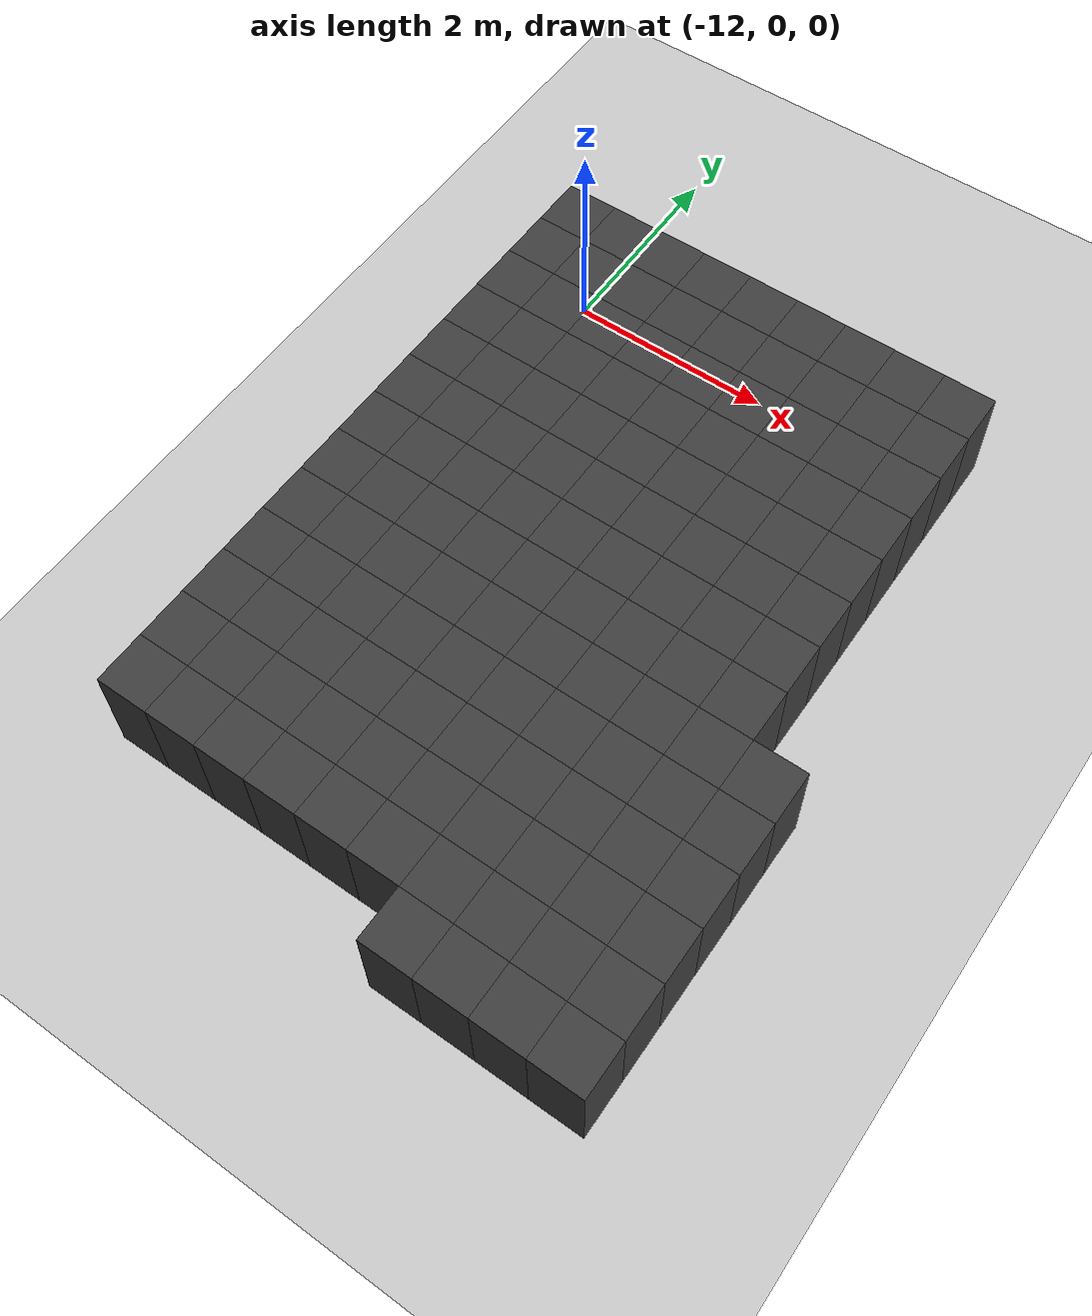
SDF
<sdf version="1.7">
 <world name="map_11779">
  <model name="ground_plane">
   <static>true</static>
   <link name="link">
    <collision name="collision">
     <geometry><plane><normal>0 0 1</normal><size>200 200</size></plane></geometry>
    </collision>
    <visual name="visual">
     <geometry><plane><normal>0 0 1</normal><size>200 200</size></plane></geometry>
     <material><ambient>0.8 0.8 0.8 1</ambient><diffuse>0.8 0.8 0.8 1</diffuse></material>
    </visual>
   </link>
  </model>
  <model name="maze_environment">
   <static>true</static>
   <link name="wall_972">
    <pose>-12.250 0.250 0.500 0 0 0</pose>
    <collision name="col"><geometry><box><size>0.5 0.5 1.0</size></box></geometry></collision>
    <visual name="vis">
     <geometry><box><size>0.5 0.5 1.0</size></box></geometry>
     <material><ambient>0.15 0.15 0.15 1</ambient><diffuse>0.25 0.25 0.25 1</diffuse></material>
    </visual>
   </link>
   <link name="wall_973">
    <pose>-11.750 0.250 0.500 0 0 0</pose>
    <collision name="col"><geometry><box><size>0.5 0.5 1.0</size></box></geometry></collision>
    <visual name="vis">
     <geometry><box><size>0.5 0.5 1.0</size></box></geometry>
     <material><ambient>0.15 0.15 0.15 1</ambient><diffuse>0.25 0.25 0.25 1</diffuse></material>
    </visual>
   </link>
   <link name="wall_974">
    <pose>-11.250 0.250 0.500 0 0 0</pose>
    <collision name="col"><geometry><box><size>0.5 0.5 1.0</size></box></geometry></collision>
    <visual name="vis">
     <geometry><box><size>0.5 0.5 1.0</size></box></geometry>
     <material><ambient>0.15 0.15 0.15 1</ambient><diffuse>0.25 0.25 0.25 1</diffuse></material>
    </visual>
   </link>
   <link name="wall_975">
    <pose>-10.750 0.250 0.500 0 0 0</pose>
    <collision name="col"><geometry><box><size>0.5 0.5 1.0</size></box></geometry></collision>
    <visual name="vis">
     <geometry><box><size>0.5 0.5 1.0</size></box></geometry>
     <material><ambient>0.15 0.15 0.15 1</ambient><diffuse>0.25 0.25 0.25 1</diffuse></material>
    </visual>
   </link>
   <link name="wall_976">
    <pose>-10.250 0.250 0.500 0 0 0</pose>
    <collision name="col"><geometry><box><size>0.5 0.5 1.0</size></box></geometry></collision>
    <visual name="vis">
     <geometry><box><size>0.5 0.5 1.0</size></box></geometry>
     <material><ambient>0.15 0.15 0.15 1</ambient><diffuse>0.25 0.25 0.25 1</diffuse></material>
    </visual>
   </link>
   <link name="wall_977">
    <pose>-9.750 0.250 0.500 0 0 0</pose>
    <collision name="col"><geometry><box><size>0.5 0.5 1.0</size></box></geometry></collision>
    <visual name="vis">
     <geometry><box><size>0.5 0.5 1.0</size></box></geometry>
     <material><ambient>0.15 0.15 0.15 1</ambient><diffuse>0.25 0.25 0.25 1</diffuse></material>
    </visual>
   </link>
   <link name="wall_978">
    <pose>-9.250 0.250 0.500 0 0 0</pose>
    <collision name="col"><geometry><box><size>0.5 0.5 1.0</size></box></geometry></collision>
    <visual name="vis">
     <geometry><box><size>0.5 0.5 1.0</size></box></geometry>
     <material><ambient>0.15 0.15 0.15 1</ambient><diffuse>0.25 0.25 0.25 1</diffuse></material>
    </visual>
   </link>
   <link name="wall_979">
    <pose>-8.750 0.250 0.500 0 0 0</pose>
    <collision name="col"><geometry><box><size>0.5 0.5 1.0</size></box></geometry></collision>
    <visual name="vis">
     <geometry><box><size>0.5 0.5 1.0</size></box></geometry>
     <material><ambient>0.15 0.15 0.15 1</ambient><diffuse>0.25 0.25 0.25 1</diffuse></material>
    </visual>
   </link>
   <link name="wall_980">
    <pose>-8.250 0.250 0.500 0 0 0</pose>
    <collision name="col"><geometry><box><size>0.5 0.5 1.0</size></box></geometry></collision>
    <visual name="vis">
     <geometry><box><size>0.5 0.5 1.0</size></box></geometry>
     <material><ambient>0.15 0.15 0.15 1</ambient><diffuse>0.25 0.25 0.25 1</diffuse></material>
    </visual>
   </link>
   <link name="wall_1013">
    <pose>-12.250 -0.250 0.500 0 0 0</pose>
    <collision name="col"><geometry><box><size>0.5 0.5 1.0</size></box></geometry></collision>
    <visual name="vis">
     <geometry><box><size>0.5 0.5 1.0</size></box></geometry>
     <material><ambient>0.15 0.15 0.15 1</ambient><diffuse>0.25 0.25 0.25 1</diffuse></material>
    </visual>
   </link>
   <link name="wall_1014">
    <pose>-11.750 -0.250 0.500 0 0 0</pose>
    <collision name="col"><geometry><box><size>0.5 0.5 1.0</size></box></geometry></collision>
    <visual name="vis">
     <geometry><box><size>0.5 0.5 1.0</size></box></geometry>
     <material><ambient>0.15 0.15 0.15 1</ambient><diffuse>0.25 0.25 0.25 1</diffuse></material>
    </visual>
   </link>
   <link name="wall_1015">
    <pose>-11.250 -0.250 0.500 0 0 0</pose>
    <collision name="col"><geometry><box><size>0.5 0.5 1.0</size></box></geometry></collision>
    <visual name="vis">
     <geometry><box><size>0.5 0.5 1.0</size></box></geometry>
     <material><ambient>0.15 0.15 0.15 1</ambient><diffuse>0.25 0.25 0.25 1</diffuse></material>
    </visual>
   </link>
   <link name="wall_1016">
    <pose>-10.750 -0.250 0.500 0 0 0</pose>
    <collision name="col"><geometry><box><size>0.5 0.5 1.0</size></box></geometry></collision>
    <visual name="vis">
     <geometry><box><size>0.5 0.5 1.0</size></box></geometry>
     <material><ambient>0.15 0.15 0.15 1</ambient><diffuse>0.25 0.25 0.25 1</diffuse></material>
    </visual>
   </link>
   <link name="wall_1017">
    <pose>-10.250 -0.250 0.500 0 0 0</pose>
    <collision name="col"><geometry><box><size>0.5 0.5 1.0</size></box></geometry></collision>
    <visual name="vis">
     <geometry><box><size>0.5 0.5 1.0</size></box></geometry>
     <material><ambient>0.15 0.15 0.15 1</ambient><diffuse>0.25 0.25 0.25 1</diffuse></material>
    </visual>
   </link>
   <link name="wall_1018">
    <pose>-9.750 -0.250 0.500 0 0 0</pose>
    <collision name="col"><geometry><box><size>0.5 0.5 1.0</size></box></geometry></collision>
    <visual name="vis">
     <geometry><box><size>0.5 0.5 1.0</size></box></geometry>
     <material><ambient>0.15 0.15 0.15 1</ambient><diffuse>0.25 0.25 0.25 1</diffuse></material>
    </visual>
   </link>
   <link name="wall_1019">
    <pose>-9.250 -0.250 0.500 0 0 0</pose>
    <collision name="col"><geometry><box><size>0.5 0.5 1.0</size></box></geometry></collision>
    <visual name="vis">
     <geometry><box><size>0.5 0.5 1.0</size></box></geometry>
     <material><ambient>0.15 0.15 0.15 1</ambient><diffuse>0.25 0.25 0.25 1</diffuse></material>
    </visual>
   </link>
   <link name="wall_1020">
    <pose>-8.750 -0.250 0.500 0 0 0</pose>
    <collision name="col"><geometry><box><size>0.5 0.5 1.0</size></box></geometry></collision>
    <visual name="vis">
     <geometry><box><size>0.5 0.5 1.0</size></box></geometry>
     <material><ambient>0.15 0.15 0.15 1</ambient><diffuse>0.25 0.25 0.25 1</diffuse></material>
    </visual>
   </link>
   <link name="wall_1021">
    <pose>-8.250 -0.250 0.500 0 0 0</pose>
    <collision name="col"><geometry><box><size>0.5 0.5 1.0</size></box></geometry></collision>
    <visual name="vis">
     <geometry><box><size>0.5 0.5 1.0</size></box></geometry>
     <material><ambient>0.15 0.15 0.15 1</ambient><diffuse>0.25 0.25 0.25 1</diffuse></material>
    </visual>
   </link>
   <link name="wall_1054">
    <pose>-12.250 -0.750 0.500 0 0 0</pose>
    <collision name="col"><geometry><box><size>0.5 0.5 1.0</size></box></geometry></collision>
    <visual name="vis">
     <geometry><box><size>0.5 0.5 1.0</size></box></geometry>
     <material><ambient>0.15 0.15 0.15 1</ambient><diffuse>0.25 0.25 0.25 1</diffuse></material>
    </visual>
   </link>
   <link name="wall_1055">
    <pose>-11.750 -0.750 0.500 0 0 0</pose>
    <collision name="col"><geometry><box><size>0.5 0.5 1.0</size></box></geometry></collision>
    <visual name="vis">
     <geometry><box><size>0.5 0.5 1.0</size></box></geometry>
     <material><ambient>0.15 0.15 0.15 1</ambient><diffuse>0.25 0.25 0.25 1</diffuse></material>
    </visual>
   </link>
   <link name="wall_1056">
    <pose>-11.250 -0.750 0.500 0 0 0</pose>
    <collision name="col"><geometry><box><size>0.5 0.5 1.0</size></box></geometry></collision>
    <visual name="vis">
     <geometry><box><size>0.5 0.5 1.0</size></box></geometry>
     <material><ambient>0.15 0.15 0.15 1</ambient><diffuse>0.25 0.25 0.25 1</diffuse></material>
    </visual>
   </link>
   <link name="wall_1057">
    <pose>-10.750 -0.750 0.500 0 0 0</pose>
    <collision name="col"><geometry><box><size>0.5 0.5 1.0</size></box></geometry></collision>
    <visual name="vis">
     <geometry><box><size>0.5 0.5 1.0</size></box></geometry>
     <material><ambient>0.15 0.15 0.15 1</ambient><diffuse>0.25 0.25 0.25 1</diffuse></material>
    </visual>
   </link>
   <link name="wall_1058">
    <pose>-10.250 -0.750 0.500 0 0 0</pose>
    <collision name="col"><geometry><box><size>0.5 0.5 1.0</size></box></geometry></collision>
    <visual name="vis">
     <geometry><box><size>0.5 0.5 1.0</size></box></geometry>
     <material><ambient>0.15 0.15 0.15 1</ambient><diffuse>0.25 0.25 0.25 1</diffuse></material>
    </visual>
   </link>
   <link name="wall_1059">
    <pose>-9.750 -0.750 0.500 0 0 0</pose>
    <collision name="col"><geometry><box><size>0.5 0.5 1.0</size></box></geometry></collision>
    <visual name="vis">
     <geometry><box><size>0.5 0.5 1.0</size></box></geometry>
     <material><ambient>0.15 0.15 0.15 1</ambient><diffuse>0.25 0.25 0.25 1</diffuse></material>
    </visual>
   </link>
   <link name="wall_1060">
    <pose>-9.250 -0.750 0.500 0 0 0</pose>
    <collision name="col"><geometry><box><size>0.5 0.5 1.0</size></box></geometry></collision>
    <visual name="vis">
     <geometry><box><size>0.5 0.5 1.0</size></box></geometry>
     <material><ambient>0.15 0.15 0.15 1</ambient><diffuse>0.25 0.25 0.25 1</diffuse></material>
    </visual>
   </link>
   <link name="wall_1061">
    <pose>-8.750 -0.750 0.500 0 0 0</pose>
    <collision name="col"><geometry><box><size>0.5 0.5 1.0</size></box></geometry></collision>
    <visual name="vis">
     <geometry><box><size>0.5 0.5 1.0</size></box></geometry>
     <material><ambient>0.15 0.15 0.15 1</ambient><diffuse>0.25 0.25 0.25 1</diffuse></material>
    </visual>
   </link>
   <link name="wall_1062">
    <pose>-8.250 -0.750 0.500 0 0 0</pose>
    <collision name="col"><geometry><box><size>0.5 0.5 1.0</size></box></geometry></collision>
    <visual name="vis">
     <geometry><box><size>0.5 0.5 1.0</size></box></geometry>
     <material><ambient>0.15 0.15 0.15 1</ambient><diffuse>0.25 0.25 0.25 1</diffuse></material>
    </visual>
   </link>
   <link name="wall_1095">
    <pose>-12.250 -1.250 0.500 0 0 0</pose>
    <collision name="col"><geometry><box><size>0.5 0.5 1.0</size></box></geometry></collision>
    <visual name="vis">
     <geometry><box><size>0.5 0.5 1.0</size></box></geometry>
     <material><ambient>0.15 0.15 0.15 1</ambient><diffuse>0.25 0.25 0.25 1</diffuse></material>
    </visual>
   </link>
   <link name="wall_1096">
    <pose>-11.750 -1.250 0.500 0 0 0</pose>
    <collision name="col"><geometry><box><size>0.5 0.5 1.0</size></box></geometry></collision>
    <visual name="vis">
     <geometry><box><size>0.5 0.5 1.0</size></box></geometry>
     <material><ambient>0.15 0.15 0.15 1</ambient><diffuse>0.25 0.25 0.25 1</diffuse></material>
    </visual>
   </link>
   <link name="wall_1097">
    <pose>-11.250 -1.250 0.500 0 0 0</pose>
    <collision name="col"><geometry><box><size>0.5 0.5 1.0</size></box></geometry></collision>
    <visual name="vis">
     <geometry><box><size>0.5 0.5 1.0</size></box></geometry>
     <material><ambient>0.15 0.15 0.15 1</ambient><diffuse>0.25 0.25 0.25 1</diffuse></material>
    </visual>
   </link>
   <link name="wall_1098">
    <pose>-10.750 -1.250 0.500 0 0 0</pose>
    <collision name="col"><geometry><box><size>0.5 0.5 1.0</size></box></geometry></collision>
    <visual name="vis">
     <geometry><box><size>0.5 0.5 1.0</size></box></geometry>
     <material><ambient>0.15 0.15 0.15 1</ambient><diffuse>0.25 0.25 0.25 1</diffuse></material>
    </visual>
   </link>
   <link name="wall_1099">
    <pose>-10.250 -1.250 0.500 0 0 0</pose>
    <collision name="col"><geometry><box><size>0.5 0.5 1.0</size></box></geometry></collision>
    <visual name="vis">
     <geometry><box><size>0.5 0.5 1.0</size></box></geometry>
     <material><ambient>0.15 0.15 0.15 1</ambient><diffuse>0.25 0.25 0.25 1</diffuse></material>
    </visual>
   </link>
   <link name="wall_1100">
    <pose>-9.750 -1.250 0.500 0 0 0</pose>
    <collision name="col"><geometry><box><size>0.5 0.5 1.0</size></box></geometry></collision>
    <visual name="vis">
     <geometry><box><size>0.5 0.5 1.0</size></box></geometry>
     <material><ambient>0.15 0.15 0.15 1</ambient><diffuse>0.25 0.25 0.25 1</diffuse></material>
    </visual>
   </link>
   <link name="wall_1101">
    <pose>-9.250 -1.250 0.500 0 0 0</pose>
    <collision name="col"><geometry><box><size>0.5 0.5 1.0</size></box></geometry></collision>
    <visual name="vis">
     <geometry><box><size>0.5 0.5 1.0</size></box></geometry>
     <material><ambient>0.15 0.15 0.15 1</ambient><diffuse>0.25 0.25 0.25 1</diffuse></material>
    </visual>
   </link>
   <link name="wall_1102">
    <pose>-8.750 -1.250 0.500 0 0 0</pose>
    <collision name="col"><geometry><box><size>0.5 0.5 1.0</size></box></geometry></collision>
    <visual name="vis">
     <geometry><box><size>0.5 0.5 1.0</size></box></geometry>
     <material><ambient>0.15 0.15 0.15 1</ambient><diffuse>0.25 0.25 0.25 1</diffuse></material>
    </visual>
   </link>
   <link name="wall_1103">
    <pose>-8.250 -1.250 0.500 0 0 0</pose>
    <collision name="col"><geometry><box><size>0.5 0.5 1.0</size></box></geometry></collision>
    <visual name="vis">
     <geometry><box><size>0.5 0.5 1.0</size></box></geometry>
     <material><ambient>0.15 0.15 0.15 1</ambient><diffuse>0.25 0.25 0.25 1</diffuse></material>
    </visual>
   </link>
   <link name="wall_1135">
    <pose>-12.250 -1.750 0.500 0 0 0</pose>
    <collision name="col"><geometry><box><size>0.5 0.5 1.0</size></box></geometry></collision>
    <visual name="vis">
     <geometry><box><size>0.5 0.5 1.0</size></box></geometry>
     <material><ambient>0.15 0.15 0.15 1</ambient><diffuse>0.25 0.25 0.25 1</diffuse></material>
    </visual>
   </link>
   <link name="wall_1136">
    <pose>-11.750 -1.750 0.500 0 0 0</pose>
    <collision name="col"><geometry><box><size>0.5 0.5 1.0</size></box></geometry></collision>
    <visual name="vis">
     <geometry><box><size>0.5 0.5 1.0</size></box></geometry>
     <material><ambient>0.15 0.15 0.15 1</ambient><diffuse>0.25 0.25 0.25 1</diffuse></material>
    </visual>
   </link>
   <link name="wall_1137">
    <pose>-11.250 -1.750 0.500 0 0 0</pose>
    <collision name="col"><geometry><box><size>0.5 0.5 1.0</size></box></geometry></collision>
    <visual name="vis">
     <geometry><box><size>0.5 0.5 1.0</size></box></geometry>
     <material><ambient>0.15 0.15 0.15 1</ambient><diffuse>0.25 0.25 0.25 1</diffuse></material>
    </visual>
   </link>
   <link name="wall_1138">
    <pose>-10.750 -1.750 0.500 0 0 0</pose>
    <collision name="col"><geometry><box><size>0.5 0.5 1.0</size></box></geometry></collision>
    <visual name="vis">
     <geometry><box><size>0.5 0.5 1.0</size></box></geometry>
     <material><ambient>0.15 0.15 0.15 1</ambient><diffuse>0.25 0.25 0.25 1</diffuse></material>
    </visual>
   </link>
   <link name="wall_1139">
    <pose>-10.250 -1.750 0.500 0 0 0</pose>
    <collision name="col"><geometry><box><size>0.5 0.5 1.0</size></box></geometry></collision>
    <visual name="vis">
     <geometry><box><size>0.5 0.5 1.0</size></box></geometry>
     <material><ambient>0.15 0.15 0.15 1</ambient><diffuse>0.25 0.25 0.25 1</diffuse></material>
    </visual>
   </link>
   <link name="wall_1140">
    <pose>-9.750 -1.750 0.500 0 0 0</pose>
    <collision name="col"><geometry><box><size>0.5 0.5 1.0</size></box></geometry></collision>
    <visual name="vis">
     <geometry><box><size>0.5 0.5 1.0</size></box></geometry>
     <material><ambient>0.15 0.15 0.15 1</ambient><diffuse>0.25 0.25 0.25 1</diffuse></material>
    </visual>
   </link>
   <link name="wall_1141">
    <pose>-9.250 -1.750 0.500 0 0 0</pose>
    <collision name="col"><geometry><box><size>0.5 0.5 1.0</size></box></geometry></collision>
    <visual name="vis">
     <geometry><box><size>0.5 0.5 1.0</size></box></geometry>
     <material><ambient>0.15 0.15 0.15 1</ambient><diffuse>0.25 0.25 0.25 1</diffuse></material>
    </visual>
   </link>
   <link name="wall_1142">
    <pose>-8.750 -1.750 0.500 0 0 0</pose>
    <collision name="col"><geometry><box><size>0.5 0.5 1.0</size></box></geometry></collision>
    <visual name="vis">
     <geometry><box><size>0.5 0.5 1.0</size></box></geometry>
     <material><ambient>0.15 0.15 0.15 1</ambient><diffuse>0.25 0.25 0.25 1</diffuse></material>
    </visual>
   </link>
   <link name="wall_1143">
    <pose>-8.250 -1.750 0.500 0 0 0</pose>
    <collision name="col"><geometry><box><size>0.5 0.5 1.0</size></box></geometry></collision>
    <visual name="vis">
     <geometry><box><size>0.5 0.5 1.0</size></box></geometry>
     <material><ambient>0.15 0.15 0.15 1</ambient><diffuse>0.25 0.25 0.25 1</diffuse></material>
    </visual>
   </link>
   <link name="wall_1177">
    <pose>-12.250 -2.250 0.500 0 0 0</pose>
    <collision name="col"><geometry><box><size>0.5 0.5 1.0</size></box></geometry></collision>
    <visual name="vis">
     <geometry><box><size>0.5 0.5 1.0</size></box></geometry>
     <material><ambient>0.15 0.15 0.15 1</ambient><diffuse>0.25 0.25 0.25 1</diffuse></material>
    </visual>
   </link>
   <link name="wall_1178">
    <pose>-11.750 -2.250 0.500 0 0 0</pose>
    <collision name="col"><geometry><box><size>0.5 0.5 1.0</size></box></geometry></collision>
    <visual name="vis">
     <geometry><box><size>0.5 0.5 1.0</size></box></geometry>
     <material><ambient>0.15 0.15 0.15 1</ambient><diffuse>0.25 0.25 0.25 1</diffuse></material>
    </visual>
   </link>
   <link name="wall_1179">
    <pose>-11.250 -2.250 0.500 0 0 0</pose>
    <collision name="col"><geometry><box><size>0.5 0.5 1.0</size></box></geometry></collision>
    <visual name="vis">
     <geometry><box><size>0.5 0.5 1.0</size></box></geometry>
     <material><ambient>0.15 0.15 0.15 1</ambient><diffuse>0.25 0.25 0.25 1</diffuse></material>
    </visual>
   </link>
   <link name="wall_1180">
    <pose>-10.750 -2.250 0.500 0 0 0</pose>
    <collision name="col"><geometry><box><size>0.5 0.5 1.0</size></box></geometry></collision>
    <visual name="vis">
     <geometry><box><size>0.5 0.5 1.0</size></box></geometry>
     <material><ambient>0.15 0.15 0.15 1</ambient><diffuse>0.25 0.25 0.25 1</diffuse></material>
    </visual>
   </link>
   <link name="wall_1181">
    <pose>-10.250 -2.250 0.500 0 0 0</pose>
    <collision name="col"><geometry><box><size>0.5 0.5 1.0</size></box></geometry></collision>
    <visual name="vis">
     <geometry><box><size>0.5 0.5 1.0</size></box></geometry>
     <material><ambient>0.15 0.15 0.15 1</ambient><diffuse>0.25 0.25 0.25 1</diffuse></material>
    </visual>
   </link>
   <link name="wall_1182">
    <pose>-9.750 -2.250 0.500 0 0 0</pose>
    <collision name="col"><geometry><box><size>0.5 0.5 1.0</size></box></geometry></collision>
    <visual name="vis">
     <geometry><box><size>0.5 0.5 1.0</size></box></geometry>
     <material><ambient>0.15 0.15 0.15 1</ambient><diffuse>0.25 0.25 0.25 1</diffuse></material>
    </visual>
   </link>
   <link name="wall_1183">
    <pose>-9.250 -2.250 0.500 0 0 0</pose>
    <collision name="col"><geometry><box><size>0.5 0.5 1.0</size></box></geometry></collision>
    <visual name="vis">
     <geometry><box><size>0.5 0.5 1.0</size></box></geometry>
     <material><ambient>0.15 0.15 0.15 1</ambient><diffuse>0.25 0.25 0.25 1</diffuse></material>
    </visual>
   </link>
   <link name="wall_1184">
    <pose>-8.750 -2.250 0.500 0 0 0</pose>
    <collision name="col"><geometry><box><size>0.5 0.5 1.0</size></box></geometry></collision>
    <visual name="vis">
     <geometry><box><size>0.5 0.5 1.0</size></box></geometry>
     <material><ambient>0.15 0.15 0.15 1</ambient><diffuse>0.25 0.25 0.25 1</diffuse></material>
    </visual>
   </link>
   <link name="wall_1185">
    <pose>-8.250 -2.250 0.500 0 0 0</pose>
    <collision name="col"><geometry><box><size>0.5 0.5 1.0</size></box></geometry></collision>
    <visual name="vis">
     <geometry><box><size>0.5 0.5 1.0</size></box></geometry>
     <material><ambient>0.15 0.15 0.15 1</ambient><diffuse>0.25 0.25 0.25 1</diffuse></material>
    </visual>
   </link>
   <link name="wall_1219">
    <pose>-12.250 -2.750 0.500 0 0 0</pose>
    <collision name="col"><geometry><box><size>0.5 0.5 1.0</size></box></geometry></collision>
    <visual name="vis">
     <geometry><box><size>0.5 0.5 1.0</size></box></geometry>
     <material><ambient>0.15 0.15 0.15 1</ambient><diffuse>0.25 0.25 0.25 1</diffuse></material>
    </visual>
   </link>
   <link name="wall_1220">
    <pose>-11.750 -2.750 0.500 0 0 0</pose>
    <collision name="col"><geometry><box><size>0.5 0.5 1.0</size></box></geometry></collision>
    <visual name="vis">
     <geometry><box><size>0.5 0.5 1.0</size></box></geometry>
     <material><ambient>0.15 0.15 0.15 1</ambient><diffuse>0.25 0.25 0.25 1</diffuse></material>
    </visual>
   </link>
   <link name="wall_1221">
    <pose>-11.250 -2.750 0.500 0 0 0</pose>
    <collision name="col"><geometry><box><size>0.5 0.5 1.0</size></box></geometry></collision>
    <visual name="vis">
     <geometry><box><size>0.5 0.5 1.0</size></box></geometry>
     <material><ambient>0.15 0.15 0.15 1</ambient><diffuse>0.25 0.25 0.25 1</diffuse></material>
    </visual>
   </link>
   <link name="wall_1222">
    <pose>-10.750 -2.750 0.500 0 0 0</pose>
    <collision name="col"><geometry><box><size>0.5 0.5 1.0</size></box></geometry></collision>
    <visual name="vis">
     <geometry><box><size>0.5 0.5 1.0</size></box></geometry>
     <material><ambient>0.15 0.15 0.15 1</ambient><diffuse>0.25 0.25 0.25 1</diffuse></material>
    </visual>
   </link>
   <link name="wall_1223">
    <pose>-10.250 -2.750 0.500 0 0 0</pose>
    <collision name="col"><geometry><box><size>0.5 0.5 1.0</size></box></geometry></collision>
    <visual name="vis">
     <geometry><box><size>0.5 0.5 1.0</size></box></geometry>
     <material><ambient>0.15 0.15 0.15 1</ambient><diffuse>0.25 0.25 0.25 1</diffuse></material>
    </visual>
   </link>
   <link name="wall_1224">
    <pose>-9.750 -2.750 0.500 0 0 0</pose>
    <collision name="col"><geometry><box><size>0.5 0.5 1.0</size></box></geometry></collision>
    <visual name="vis">
     <geometry><box><size>0.5 0.5 1.0</size></box></geometry>
     <material><ambient>0.15 0.15 0.15 1</ambient><diffuse>0.25 0.25 0.25 1</diffuse></material>
    </visual>
   </link>
   <link name="wall_1225">
    <pose>-9.250 -2.750 0.500 0 0 0</pose>
    <collision name="col"><geometry><box><size>0.5 0.5 1.0</size></box></geometry></collision>
    <visual name="vis">
     <geometry><box><size>0.5 0.5 1.0</size></box></geometry>
     <material><ambient>0.15 0.15 0.15 1</ambient><diffuse>0.25 0.25 0.25 1</diffuse></material>
    </visual>
   </link>
   <link name="wall_1226">
    <pose>-8.750 -2.750 0.500 0 0 0</pose>
    <collision name="col"><geometry><box><size>0.5 0.5 1.0</size></box></geometry></collision>
    <visual name="vis">
     <geometry><box><size>0.5 0.5 1.0</size></box></geometry>
     <material><ambient>0.15 0.15 0.15 1</ambient><diffuse>0.25 0.25 0.25 1</diffuse></material>
    </visual>
   </link>
   <link name="wall_1227">
    <pose>-8.250 -2.750 0.500 0 0 0</pose>
    <collision name="col"><geometry><box><size>0.5 0.5 1.0</size></box></geometry></collision>
    <visual name="vis">
     <geometry><box><size>0.5 0.5 1.0</size></box></geometry>
     <material><ambient>0.15 0.15 0.15 1</ambient><diffuse>0.25 0.25 0.25 1</diffuse></material>
    </visual>
   </link>
   <link name="wall_1259">
    <pose>-12.250 -3.250 0.500 0 0 0</pose>
    <collision name="col"><geometry><box><size>0.5 0.5 1.0</size></box></geometry></collision>
    <visual name="vis">
     <geometry><box><size>0.5 0.5 1.0</size></box></geometry>
     <material><ambient>0.15 0.15 0.15 1</ambient><diffuse>0.25 0.25 0.25 1</diffuse></material>
    </visual>
   </link>
   <link name="wall_1260">
    <pose>-11.750 -3.250 0.500 0 0 0</pose>
    <collision name="col"><geometry><box><size>0.5 0.5 1.0</size></box></geometry></collision>
    <visual name="vis">
     <geometry><box><size>0.5 0.5 1.0</size></box></geometry>
     <material><ambient>0.15 0.15 0.15 1</ambient><diffuse>0.25 0.25 0.25 1</diffuse></material>
    </visual>
   </link>
   <link name="wall_1261">
    <pose>-11.250 -3.250 0.500 0 0 0</pose>
    <collision name="col"><geometry><box><size>0.5 0.5 1.0</size></box></geometry></collision>
    <visual name="vis">
     <geometry><box><size>0.5 0.5 1.0</size></box></geometry>
     <material><ambient>0.15 0.15 0.15 1</ambient><diffuse>0.25 0.25 0.25 1</diffuse></material>
    </visual>
   </link>
   <link name="wall_1262">
    <pose>-10.750 -3.250 0.500 0 0 0</pose>
    <collision name="col"><geometry><box><size>0.5 0.5 1.0</size></box></geometry></collision>
    <visual name="vis">
     <geometry><box><size>0.5 0.5 1.0</size></box></geometry>
     <material><ambient>0.15 0.15 0.15 1</ambient><diffuse>0.25 0.25 0.25 1</diffuse></material>
    </visual>
   </link>
   <link name="wall_1263">
    <pose>-10.250 -3.250 0.500 0 0 0</pose>
    <collision name="col"><geometry><box><size>0.5 0.5 1.0</size></box></geometry></collision>
    <visual name="vis">
     <geometry><box><size>0.5 0.5 1.0</size></box></geometry>
     <material><ambient>0.15 0.15 0.15 1</ambient><diffuse>0.25 0.25 0.25 1</diffuse></material>
    </visual>
   </link>
   <link name="wall_1264">
    <pose>-9.750 -3.250 0.500 0 0 0</pose>
    <collision name="col"><geometry><box><size>0.5 0.5 1.0</size></box></geometry></collision>
    <visual name="vis">
     <geometry><box><size>0.5 0.5 1.0</size></box></geometry>
     <material><ambient>0.15 0.15 0.15 1</ambient><diffuse>0.25 0.25 0.25 1</diffuse></material>
    </visual>
   </link>
   <link name="wall_1265">
    <pose>-9.250 -3.250 0.500 0 0 0</pose>
    <collision name="col"><geometry><box><size>0.5 0.5 1.0</size></box></geometry></collision>
    <visual name="vis">
     <geometry><box><size>0.5 0.5 1.0</size></box></geometry>
     <material><ambient>0.15 0.15 0.15 1</ambient><diffuse>0.25 0.25 0.25 1</diffuse></material>
    </visual>
   </link>
   <link name="wall_1266">
    <pose>-8.750 -3.250 0.500 0 0 0</pose>
    <collision name="col"><geometry><box><size>0.5 0.5 1.0</size></box></geometry></collision>
    <visual name="vis">
     <geometry><box><size>0.5 0.5 1.0</size></box></geometry>
     <material><ambient>0.15 0.15 0.15 1</ambient><diffuse>0.25 0.25 0.25 1</diffuse></material>
    </visual>
   </link>
   <link name="wall_1267">
    <pose>-8.250 -3.250 0.500 0 0 0</pose>
    <collision name="col"><geometry><box><size>0.5 0.5 1.0</size></box></geometry></collision>
    <visual name="vis">
     <geometry><box><size>0.5 0.5 1.0</size></box></geometry>
     <material><ambient>0.15 0.15 0.15 1</ambient><diffuse>0.25 0.25 0.25 1</diffuse></material>
    </visual>
   </link>
   <link name="wall_1303">
    <pose>-12.250 -3.750 0.500 0 0 0</pose>
    <collision name="col"><geometry><box><size>0.5 0.5 1.0</size></box></geometry></collision>
    <visual name="vis">
     <geometry><box><size>0.5 0.5 1.0</size></box></geometry>
     <material><ambient>0.15 0.15 0.15 1</ambient><diffuse>0.25 0.25 0.25 1</diffuse></material>
    </visual>
   </link>
   <link name="wall_1304">
    <pose>-11.750 -3.750 0.500 0 0 0</pose>
    <collision name="col"><geometry><box><size>0.5 0.5 1.0</size></box></geometry></collision>
    <visual name="vis">
     <geometry><box><size>0.5 0.5 1.0</size></box></geometry>
     <material><ambient>0.15 0.15 0.15 1</ambient><diffuse>0.25 0.25 0.25 1</diffuse></material>
    </visual>
   </link>
   <link name="wall_1305">
    <pose>-11.250 -3.750 0.500 0 0 0</pose>
    <collision name="col"><geometry><box><size>0.5 0.5 1.0</size></box></geometry></collision>
    <visual name="vis">
     <geometry><box><size>0.5 0.5 1.0</size></box></geometry>
     <material><ambient>0.15 0.15 0.15 1</ambient><diffuse>0.25 0.25 0.25 1</diffuse></material>
    </visual>
   </link>
   <link name="wall_1306">
    <pose>-10.750 -3.750 0.500 0 0 0</pose>
    <collision name="col"><geometry><box><size>0.5 0.5 1.0</size></box></geometry></collision>
    <visual name="vis">
     <geometry><box><size>0.5 0.5 1.0</size></box></geometry>
     <material><ambient>0.15 0.15 0.15 1</ambient><diffuse>0.25 0.25 0.25 1</diffuse></material>
    </visual>
   </link>
   <link name="wall_1307">
    <pose>-10.250 -3.750 0.500 0 0 0</pose>
    <collision name="col"><geometry><box><size>0.5 0.5 1.0</size></box></geometry></collision>
    <visual name="vis">
     <geometry><box><size>0.5 0.5 1.0</size></box></geometry>
     <material><ambient>0.15 0.15 0.15 1</ambient><diffuse>0.25 0.25 0.25 1</diffuse></material>
    </visual>
   </link>
   <link name="wall_1308">
    <pose>-9.750 -3.750 0.500 0 0 0</pose>
    <collision name="col"><geometry><box><size>0.5 0.5 1.0</size></box></geometry></collision>
    <visual name="vis">
     <geometry><box><size>0.5 0.5 1.0</size></box></geometry>
     <material><ambient>0.15 0.15 0.15 1</ambient><diffuse>0.25 0.25 0.25 1</diffuse></material>
    </visual>
   </link>
   <link name="wall_1309">
    <pose>-9.250 -3.750 0.500 0 0 0</pose>
    <collision name="col"><geometry><box><size>0.5 0.5 1.0</size></box></geometry></collision>
    <visual name="vis">
     <geometry><box><size>0.5 0.5 1.0</size></box></geometry>
     <material><ambient>0.15 0.15 0.15 1</ambient><diffuse>0.25 0.25 0.25 1</diffuse></material>
    </visual>
   </link>
   <link name="wall_1310">
    <pose>-8.750 -3.750 0.500 0 0 0</pose>
    <collision name="col"><geometry><box><size>0.5 0.5 1.0</size></box></geometry></collision>
    <visual name="vis">
     <geometry><box><size>0.5 0.5 1.0</size></box></geometry>
     <material><ambient>0.15 0.15 0.15 1</ambient><diffuse>0.25 0.25 0.25 1</diffuse></material>
    </visual>
   </link>
   <link name="wall_1311">
    <pose>-8.250 -3.750 0.500 0 0 0</pose>
    <collision name="col"><geometry><box><size>0.5 0.5 1.0</size></box></geometry></collision>
    <visual name="vis">
     <geometry><box><size>0.5 0.5 1.0</size></box></geometry>
     <material><ambient>0.15 0.15 0.15 1</ambient><diffuse>0.25 0.25 0.25 1</diffuse></material>
    </visual>
   </link>
   <link name="wall_1312">
    <pose>-7.750 -3.750 0.500 0 0 0</pose>
    <collision name="col"><geometry><box><size>0.5 0.5 1.0</size></box></geometry></collision>
    <visual name="vis">
     <geometry><box><size>0.5 0.5 1.0</size></box></geometry>
     <material><ambient>0.15 0.15 0.15 1</ambient><diffuse>0.25 0.25 0.25 1</diffuse></material>
    </visual>
   </link>
   <link name="wall_1347">
    <pose>-12.250 -4.250 0.500 0 0 0</pose>
    <collision name="col"><geometry><box><size>0.5 0.5 1.0</size></box></geometry></collision>
    <visual name="vis">
     <geometry><box><size>0.5 0.5 1.0</size></box></geometry>
     <material><ambient>0.15 0.15 0.15 1</ambient><diffuse>0.25 0.25 0.25 1</diffuse></material>
    </visual>
   </link>
   <link name="wall_1348">
    <pose>-11.750 -4.250 0.500 0 0 0</pose>
    <collision name="col"><geometry><box><size>0.5 0.5 1.0</size></box></geometry></collision>
    <visual name="vis">
     <geometry><box><size>0.5 0.5 1.0</size></box></geometry>
     <material><ambient>0.15 0.15 0.15 1</ambient><diffuse>0.25 0.25 0.25 1</diffuse></material>
    </visual>
   </link>
   <link name="wall_1349">
    <pose>-11.250 -4.250 0.500 0 0 0</pose>
    <collision name="col"><geometry><box><size>0.5 0.5 1.0</size></box></geometry></collision>
    <visual name="vis">
     <geometry><box><size>0.5 0.5 1.0</size></box></geometry>
     <material><ambient>0.15 0.15 0.15 1</ambient><diffuse>0.25 0.25 0.25 1</diffuse></material>
    </visual>
   </link>
   <link name="wall_1350">
    <pose>-10.750 -4.250 0.500 0 0 0</pose>
    <collision name="col"><geometry><box><size>0.5 0.5 1.0</size></box></geometry></collision>
    <visual name="vis">
     <geometry><box><size>0.5 0.5 1.0</size></box></geometry>
     <material><ambient>0.15 0.15 0.15 1</ambient><diffuse>0.25 0.25 0.25 1</diffuse></material>
    </visual>
   </link>
   <link name="wall_1351">
    <pose>-10.250 -4.250 0.500 0 0 0</pose>
    <collision name="col"><geometry><box><size>0.5 0.5 1.0</size></box></geometry></collision>
    <visual name="vis">
     <geometry><box><size>0.5 0.5 1.0</size></box></geometry>
     <material><ambient>0.15 0.15 0.15 1</ambient><diffuse>0.25 0.25 0.25 1</diffuse></material>
    </visual>
   </link>
   <link name="wall_1352">
    <pose>-9.750 -4.250 0.500 0 0 0</pose>
    <collision name="col"><geometry><box><size>0.5 0.5 1.0</size></box></geometry></collision>
    <visual name="vis">
     <geometry><box><size>0.5 0.5 1.0</size></box></geometry>
     <material><ambient>0.15 0.15 0.15 1</ambient><diffuse>0.25 0.25 0.25 1</diffuse></material>
    </visual>
   </link>
   <link name="wall_1353">
    <pose>-9.250 -4.250 0.500 0 0 0</pose>
    <collision name="col"><geometry><box><size>0.5 0.5 1.0</size></box></geometry></collision>
    <visual name="vis">
     <geometry><box><size>0.5 0.5 1.0</size></box></geometry>
     <material><ambient>0.15 0.15 0.15 1</ambient><diffuse>0.25 0.25 0.25 1</diffuse></material>
    </visual>
   </link>
   <link name="wall_1354">
    <pose>-8.750 -4.250 0.500 0 0 0</pose>
    <collision name="col"><geometry><box><size>0.5 0.5 1.0</size></box></geometry></collision>
    <visual name="vis">
     <geometry><box><size>0.5 0.5 1.0</size></box></geometry>
     <material><ambient>0.15 0.15 0.15 1</ambient><diffuse>0.25 0.25 0.25 1</diffuse></material>
    </visual>
   </link>
   <link name="wall_1355">
    <pose>-8.250 -4.250 0.500 0 0 0</pose>
    <collision name="col"><geometry><box><size>0.5 0.5 1.0</size></box></geometry></collision>
    <visual name="vis">
     <geometry><box><size>0.5 0.5 1.0</size></box></geometry>
     <material><ambient>0.15 0.15 0.15 1</ambient><diffuse>0.25 0.25 0.25 1</diffuse></material>
    </visual>
   </link>
   <link name="wall_1356">
    <pose>-7.750 -4.250 0.500 0 0 0</pose>
    <collision name="col"><geometry><box><size>0.5 0.5 1.0</size></box></geometry></collision>
    <visual name="vis">
     <geometry><box><size>0.5 0.5 1.0</size></box></geometry>
     <material><ambient>0.15 0.15 0.15 1</ambient><diffuse>0.25 0.25 0.25 1</diffuse></material>
    </visual>
   </link>
   <link name="wall_1392">
    <pose>-12.250 -4.750 0.500 0 0 0</pose>
    <collision name="col"><geometry><box><size>0.5 0.5 1.0</size></box></geometry></collision>
    <visual name="vis">
     <geometry><box><size>0.5 0.5 1.0</size></box></geometry>
     <material><ambient>0.15 0.15 0.15 1</ambient><diffuse>0.25 0.25 0.25 1</diffuse></material>
    </visual>
   </link>
   <link name="wall_1393">
    <pose>-11.750 -4.750 0.500 0 0 0</pose>
    <collision name="col"><geometry><box><size>0.5 0.5 1.0</size></box></geometry></collision>
    <visual name="vis">
     <geometry><box><size>0.5 0.5 1.0</size></box></geometry>
     <material><ambient>0.15 0.15 0.15 1</ambient><diffuse>0.25 0.25 0.25 1</diffuse></material>
    </visual>
   </link>
   <link name="wall_1394">
    <pose>-11.250 -4.750 0.500 0 0 0</pose>
    <collision name="col"><geometry><box><size>0.5 0.5 1.0</size></box></geometry></collision>
    <visual name="vis">
     <geometry><box><size>0.5 0.5 1.0</size></box></geometry>
     <material><ambient>0.15 0.15 0.15 1</ambient><diffuse>0.25 0.25 0.25 1</diffuse></material>
    </visual>
   </link>
   <link name="wall_1395">
    <pose>-10.750 -4.750 0.500 0 0 0</pose>
    <collision name="col"><geometry><box><size>0.5 0.5 1.0</size></box></geometry></collision>
    <visual name="vis">
     <geometry><box><size>0.5 0.5 1.0</size></box></geometry>
     <material><ambient>0.15 0.15 0.15 1</ambient><diffuse>0.25 0.25 0.25 1</diffuse></material>
    </visual>
   </link>
   <link name="wall_1396">
    <pose>-10.250 -4.750 0.500 0 0 0</pose>
    <collision name="col"><geometry><box><size>0.5 0.5 1.0</size></box></geometry></collision>
    <visual name="vis">
     <geometry><box><size>0.5 0.5 1.0</size></box></geometry>
     <material><ambient>0.15 0.15 0.15 1</ambient><diffuse>0.25 0.25 0.25 1</diffuse></material>
    </visual>
   </link>
   <link name="wall_1397">
    <pose>-9.750 -4.750 0.500 0 0 0</pose>
    <collision name="col"><geometry><box><size>0.5 0.5 1.0</size></box></geometry></collision>
    <visual name="vis">
     <geometry><box><size>0.5 0.5 1.0</size></box></geometry>
     <material><ambient>0.15 0.15 0.15 1</ambient><diffuse>0.25 0.25 0.25 1</diffuse></material>
    </visual>
   </link>
   <link name="wall_1398">
    <pose>-9.250 -4.750 0.500 0 0 0</pose>
    <collision name="col"><geometry><box><size>0.5 0.5 1.0</size></box></geometry></collision>
    <visual name="vis">
     <geometry><box><size>0.5 0.5 1.0</size></box></geometry>
     <material><ambient>0.15 0.15 0.15 1</ambient><diffuse>0.25 0.25 0.25 1</diffuse></material>
    </visual>
   </link>
   <link name="wall_1399">
    <pose>-8.750 -4.750 0.500 0 0 0</pose>
    <collision name="col"><geometry><box><size>0.5 0.5 1.0</size></box></geometry></collision>
    <visual name="vis">
     <geometry><box><size>0.5 0.5 1.0</size></box></geometry>
     <material><ambient>0.15 0.15 0.15 1</ambient><diffuse>0.25 0.25 0.25 1</diffuse></material>
    </visual>
   </link>
   <link name="wall_1400">
    <pose>-8.250 -4.750 0.500 0 0 0</pose>
    <collision name="col"><geometry><box><size>0.5 0.5 1.0</size></box></geometry></collision>
    <visual name="vis">
     <geometry><box><size>0.5 0.5 1.0</size></box></geometry>
     <material><ambient>0.15 0.15 0.15 1</ambient><diffuse>0.25 0.25 0.25 1</diffuse></material>
    </visual>
   </link>
   <link name="wall_1401">
    <pose>-7.750 -4.750 0.500 0 0 0</pose>
    <collision name="col"><geometry><box><size>0.5 0.5 1.0</size></box></geometry></collision>
    <visual name="vis">
     <geometry><box><size>0.5 0.5 1.0</size></box></geometry>
     <material><ambient>0.15 0.15 0.15 1</ambient><diffuse>0.25 0.25 0.25 1</diffuse></material>
    </visual>
   </link>
   <link name="wall_1437">
    <pose>-12.250 -5.250 0.500 0 0 0</pose>
    <collision name="col"><geometry><box><size>0.5 0.5 1.0</size></box></geometry></collision>
    <visual name="vis">
     <geometry><box><size>0.5 0.5 1.0</size></box></geometry>
     <material><ambient>0.15 0.15 0.15 1</ambient><diffuse>0.25 0.25 0.25 1</diffuse></material>
    </visual>
   </link>
   <link name="wall_1438">
    <pose>-11.750 -5.250 0.500 0 0 0</pose>
    <collision name="col"><geometry><box><size>0.5 0.5 1.0</size></box></geometry></collision>
    <visual name="vis">
     <geometry><box><size>0.5 0.5 1.0</size></box></geometry>
     <material><ambient>0.15 0.15 0.15 1</ambient><diffuse>0.25 0.25 0.25 1</diffuse></material>
    </visual>
   </link>
   <link name="wall_1439">
    <pose>-11.250 -5.250 0.500 0 0 0</pose>
    <collision name="col"><geometry><box><size>0.5 0.5 1.0</size></box></geometry></collision>
    <visual name="vis">
     <geometry><box><size>0.5 0.5 1.0</size></box></geometry>
     <material><ambient>0.15 0.15 0.15 1</ambient><diffuse>0.25 0.25 0.25 1</diffuse></material>
    </visual>
   </link>
   <link name="wall_1440">
    <pose>-10.750 -5.250 0.500 0 0 0</pose>
    <collision name="col"><geometry><box><size>0.5 0.5 1.0</size></box></geometry></collision>
    <visual name="vis">
     <geometry><box><size>0.5 0.5 1.0</size></box></geometry>
     <material><ambient>0.15 0.15 0.15 1</ambient><diffuse>0.25 0.25 0.25 1</diffuse></material>
    </visual>
   </link>
   <link name="wall_1441">
    <pose>-10.250 -5.250 0.500 0 0 0</pose>
    <collision name="col"><geometry><box><size>0.5 0.5 1.0</size></box></geometry></collision>
    <visual name="vis">
     <geometry><box><size>0.5 0.5 1.0</size></box></geometry>
     <material><ambient>0.15 0.15 0.15 1</ambient><diffuse>0.25 0.25 0.25 1</diffuse></material>
    </visual>
   </link>
   <link name="wall_1442">
    <pose>-9.750 -5.250 0.500 0 0 0</pose>
    <collision name="col"><geometry><box><size>0.5 0.5 1.0</size></box></geometry></collision>
    <visual name="vis">
     <geometry><box><size>0.5 0.5 1.0</size></box></geometry>
     <material><ambient>0.15 0.15 0.15 1</ambient><diffuse>0.25 0.25 0.25 1</diffuse></material>
    </visual>
   </link>
   <link name="wall_1443">
    <pose>-9.250 -5.250 0.500 0 0 0</pose>
    <collision name="col"><geometry><box><size>0.5 0.5 1.0</size></box></geometry></collision>
    <visual name="vis">
     <geometry><box><size>0.5 0.5 1.0</size></box></geometry>
     <material><ambient>0.15 0.15 0.15 1</ambient><diffuse>0.25 0.25 0.25 1</diffuse></material>
    </visual>
   </link>
   <link name="wall_1444">
    <pose>-8.750 -5.250 0.500 0 0 0</pose>
    <collision name="col"><geometry><box><size>0.5 0.5 1.0</size></box></geometry></collision>
    <visual name="vis">
     <geometry><box><size>0.5 0.5 1.0</size></box></geometry>
     <material><ambient>0.15 0.15 0.15 1</ambient><diffuse>0.25 0.25 0.25 1</diffuse></material>
    </visual>
   </link>
   <link name="wall_1445">
    <pose>-8.250 -5.250 0.500 0 0 0</pose>
    <collision name="col"><geometry><box><size>0.5 0.5 1.0</size></box></geometry></collision>
    <visual name="vis">
     <geometry><box><size>0.5 0.5 1.0</size></box></geometry>
     <material><ambient>0.15 0.15 0.15 1</ambient><diffuse>0.25 0.25 0.25 1</diffuse></material>
    </visual>
   </link>
   <link name="wall_1446">
    <pose>-7.750 -5.250 0.500 0 0 0</pose>
    <collision name="col"><geometry><box><size>0.5 0.5 1.0</size></box></geometry></collision>
    <visual name="vis">
     <geometry><box><size>0.5 0.5 1.0</size></box></geometry>
     <material><ambient>0.15 0.15 0.15 1</ambient><diffuse>0.25 0.25 0.25 1</diffuse></material>
    </visual>
   </link>
   <link name="wall_1486">
    <pose>-12.250 -5.750 0.500 0 0 0</pose>
    <collision name="col"><geometry><box><size>0.5 0.5 1.0</size></box></geometry></collision>
    <visual name="vis">
     <geometry><box><size>0.5 0.5 1.0</size></box></geometry>
     <material><ambient>0.15 0.15 0.15 1</ambient><diffuse>0.25 0.25 0.25 1</diffuse></material>
    </visual>
   </link>
   <link name="wall_1487">
    <pose>-11.750 -5.750 0.500 0 0 0</pose>
    <collision name="col"><geometry><box><size>0.5 0.5 1.0</size></box></geometry></collision>
    <visual name="vis">
     <geometry><box><size>0.5 0.5 1.0</size></box></geometry>
     <material><ambient>0.15 0.15 0.15 1</ambient><diffuse>0.25 0.25 0.25 1</diffuse></material>
    </visual>
   </link>
   <link name="wall_1488">
    <pose>-11.250 -5.750 0.500 0 0 0</pose>
    <collision name="col"><geometry><box><size>0.5 0.5 1.0</size></box></geometry></collision>
    <visual name="vis">
     <geometry><box><size>0.5 0.5 1.0</size></box></geometry>
     <material><ambient>0.15 0.15 0.15 1</ambient><diffuse>0.25 0.25 0.25 1</diffuse></material>
    </visual>
   </link>
   <link name="wall_1489">
    <pose>-10.750 -5.750 0.500 0 0 0</pose>
    <collision name="col"><geometry><box><size>0.5 0.5 1.0</size></box></geometry></collision>
    <visual name="vis">
     <geometry><box><size>0.5 0.5 1.0</size></box></geometry>
     <material><ambient>0.15 0.15 0.15 1</ambient><diffuse>0.25 0.25 0.25 1</diffuse></material>
    </visual>
   </link>
   <link name="wall_1490">
    <pose>-10.250 -5.750 0.500 0 0 0</pose>
    <collision name="col"><geometry><box><size>0.5 0.5 1.0</size></box></geometry></collision>
    <visual name="vis">
     <geometry><box><size>0.5 0.5 1.0</size></box></geometry>
     <material><ambient>0.15 0.15 0.15 1</ambient><diffuse>0.25 0.25 0.25 1</diffuse></material>
    </visual>
   </link>
   <link name="wall_1491">
    <pose>-9.750 -5.750 0.500 0 0 0</pose>
    <collision name="col"><geometry><box><size>0.5 0.5 1.0</size></box></geometry></collision>
    <visual name="vis">
     <geometry><box><size>0.5 0.5 1.0</size></box></geometry>
     <material><ambient>0.15 0.15 0.15 1</ambient><diffuse>0.25 0.25 0.25 1</diffuse></material>
    </visual>
   </link>
   <link name="wall_1492">
    <pose>-9.250 -5.750 0.500 0 0 0</pose>
    <collision name="col"><geometry><box><size>0.5 0.5 1.0</size></box></geometry></collision>
    <visual name="vis">
     <geometry><box><size>0.5 0.5 1.0</size></box></geometry>
     <material><ambient>0.15 0.15 0.15 1</ambient><diffuse>0.25 0.25 0.25 1</diffuse></material>
    </visual>
   </link>
   <link name="wall_1493">
    <pose>-8.750 -5.750 0.500 0 0 0</pose>
    <collision name="col"><geometry><box><size>0.5 0.5 1.0</size></box></geometry></collision>
    <visual name="vis">
     <geometry><box><size>0.5 0.5 1.0</size></box></geometry>
     <material><ambient>0.15 0.15 0.15 1</ambient><diffuse>0.25 0.25 0.25 1</diffuse></material>
    </visual>
   </link>
   <link name="wall_1494">
    <pose>-8.250 -5.750 0.500 0 0 0</pose>
    <collision name="col"><geometry><box><size>0.5 0.5 1.0</size></box></geometry></collision>
    <visual name="vis">
     <geometry><box><size>0.5 0.5 1.0</size></box></geometry>
     <material><ambient>0.15 0.15 0.15 1</ambient><diffuse>0.25 0.25 0.25 1</diffuse></material>
    </visual>
   </link>
   <link name="wall_1495">
    <pose>-7.750 -5.750 0.500 0 0 0</pose>
    <collision name="col"><geometry><box><size>0.5 0.5 1.0</size></box></geometry></collision>
    <visual name="vis">
     <geometry><box><size>0.5 0.5 1.0</size></box></geometry>
     <material><ambient>0.15 0.15 0.15 1</ambient><diffuse>0.25 0.25 0.25 1</diffuse></material>
    </visual>
   </link>
   <link name="wall_1541">
    <pose>-9.250 -6.250 0.500 0 0 0</pose>
    <collision name="col"><geometry><box><size>0.5 0.5 1.0</size></box></geometry></collision>
    <visual name="vis">
     <geometry><box><size>0.5 0.5 1.0</size></box></geometry>
     <material><ambient>0.15 0.15 0.15 1</ambient><diffuse>0.25 0.25 0.25 1</diffuse></material>
    </visual>
   </link>
   <link name="wall_1542">
    <pose>-8.750 -6.250 0.500 0 0 0</pose>
    <collision name="col"><geometry><box><size>0.5 0.5 1.0</size></box></geometry></collision>
    <visual name="vis">
     <geometry><box><size>0.5 0.5 1.0</size></box></geometry>
     <material><ambient>0.15 0.15 0.15 1</ambient><diffuse>0.25 0.25 0.25 1</diffuse></material>
    </visual>
   </link>
   <link name="wall_1543">
    <pose>-8.250 -6.250 0.500 0 0 0</pose>
    <collision name="col"><geometry><box><size>0.5 0.5 1.0</size></box></geometry></collision>
    <visual name="vis">
     <geometry><box><size>0.5 0.5 1.0</size></box></geometry>
     <material><ambient>0.15 0.15 0.15 1</ambient><diffuse>0.25 0.25 0.25 1</diffuse></material>
    </visual>
   </link>
   <link name="wall_1544">
    <pose>-7.750 -6.250 0.500 0 0 0</pose>
    <collision name="col"><geometry><box><size>0.5 0.5 1.0</size></box></geometry></collision>
    <visual name="vis">
     <geometry><box><size>0.5 0.5 1.0</size></box></geometry>
     <material><ambient>0.15 0.15 0.15 1</ambient><diffuse>0.25 0.25 0.25 1</diffuse></material>
    </visual>
   </link>
  </model>
 </world>
</sdf>
